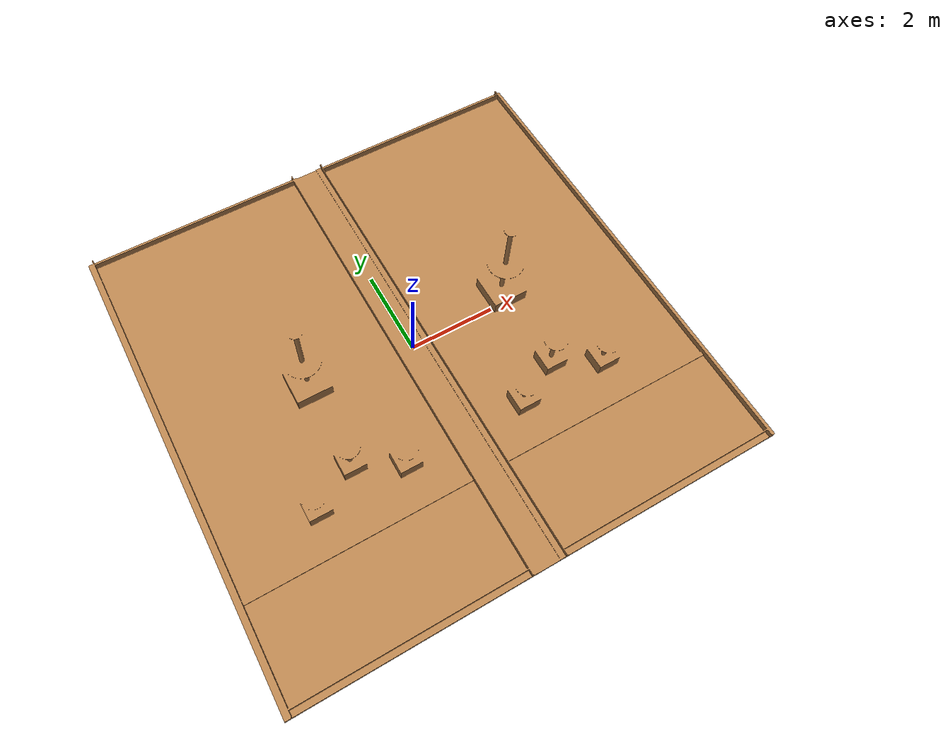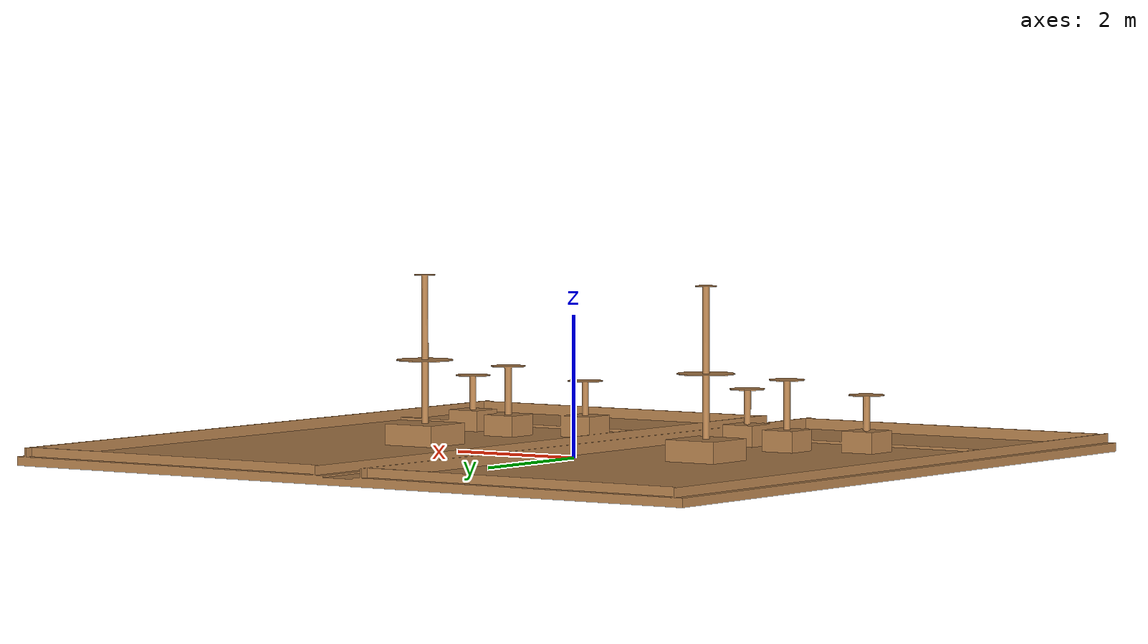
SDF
<?xml version="1.0" encoding="UTF-8"?>
<sdf version="1.5">
  <model name="field">
    <link name="link">
      <inertial>
        <mass>0.0</mass>
        <inertia>
          <ixx>0.0</ixx>
          <ixy>0.0</ixy>
          <ixz>0.0</ixz>
          <iyy>0.0</iyy>
          <iyz>0.0</iyz>
          <izz>0.0</izz>
        </inertia>
      </inertial>
      <collision name="collision">
        <pose>0 0 0 0 0 0</pose>
        <geometry>
          <mesh>
            <uri>model://field/meshes/field.stl</uri>
          </mesh>
        </geometry>
      </collision>
      <visual name="visual">
        <pose>0 0 0 0 0 0</pose>
        <geometry>
          <mesh>
            <uri>model://field/meshes/field.stl</uri>
          </mesh>
        </geometry>
        <material>
          <script>
            <name>Gazebo/Wood</name>
          </script>
        </material>
      </visual>
    </link>
  </model>
</sdf>
